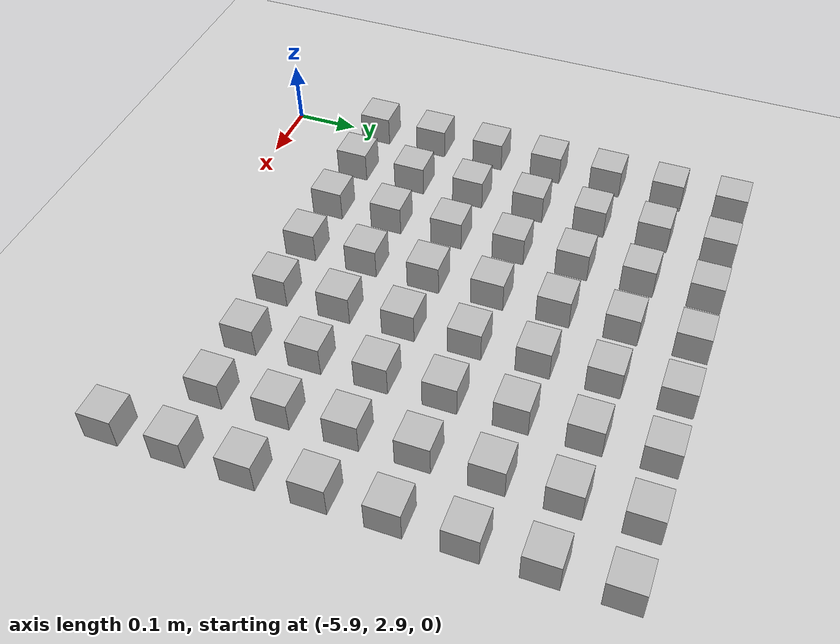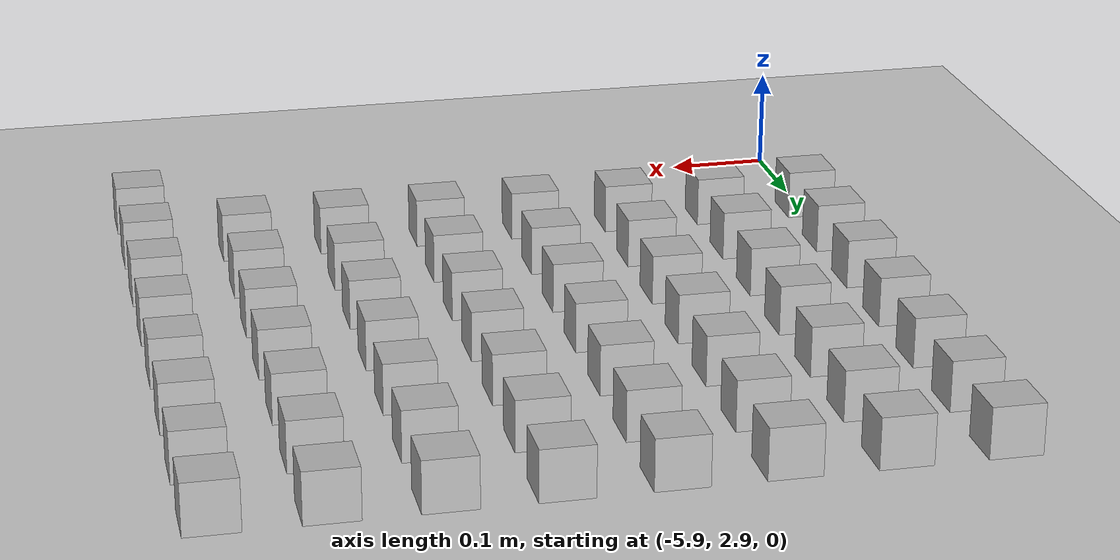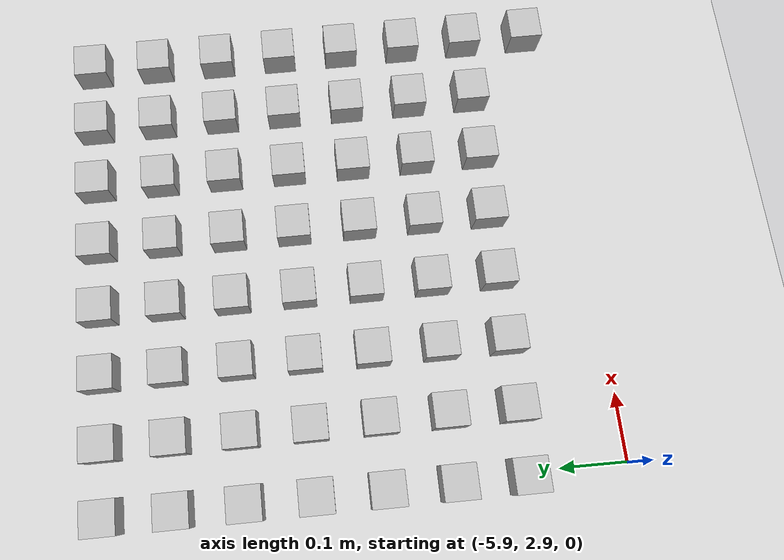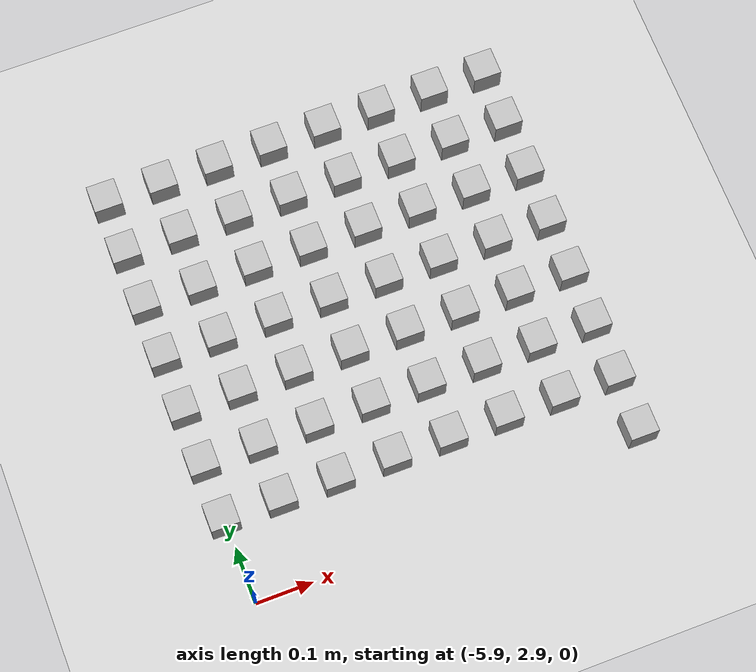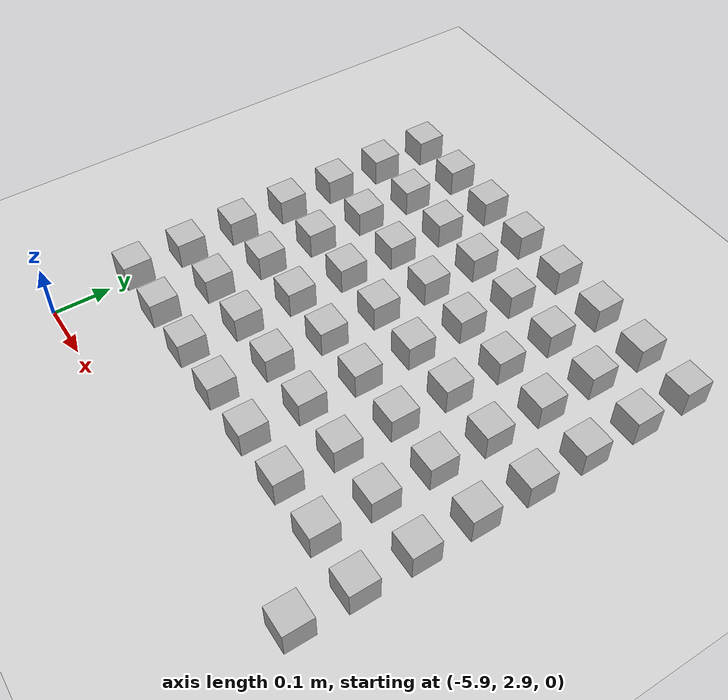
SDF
<sdf version="1.6">
 <world name="default">
  <model name="ground_plane">
   <static>1</static>
   <link name="link">
    <collision name="collision">
     <geometry><plane><normal>0 0 1</normal><size>100 100</size></plane></geometry>
     <surface><friction><ode><mu>100</mu><mu2>50</mu2></ode></friction></surface>
    </collision>
    <visual name="visual">
     <cast_shadows>0</cast_shadows>
     <geometry><plane><normal>0 0 1</normal><size>100 100</size></plane></geometry>
     <material>
      <script><uri>file://media/materials/scripts/gazebo.material</uri><name>Gazebo/Grey</name></script>
     </material>
    </visual>
   </link>
  </model>
  <model name="at135">
   <static>0</static>
   <link name="link">
    <inertial>
     <mass>0.01</mass>
     <inertia><ixx>4e-05</ixx><ixy>0</ixy><ixz>0</ixz><iyy>4e-05</iyy><iyz>0</iyz><izz>4e-05</izz></inertia>
    </inertial>
    <visual name="visual">
     <geometry><box><size>0.05 0.05 0.05</size></box></geometry>
     <material>
      <script>
       <uri>model://at0/materials/scripts</uri>
       <uri>model://at0/materials/textures</uri>
       <name>at0/Diffuse</name>
      </script>
     </material>
    </visual>
    <collision name="collision">
     <geometry><box><size>0.05 0.05 0.05</size></box></geometry>
     <surface><friction><ode><mu>0.8</mu><mu2>0.7</mu2></ode></friction></surface>
    </collision>
   </link>
   <pose>-5.20443 2.95036 0.025 0 -0 0</pose>
  </model>
  <model name="at136">
   <static>0</static>
   <link name="link">
    <inertial>
     <mass>0.01</mass>
     <inertia><ixx>4e-05</ixx><ixy>0</ixy><ixz>0</ixz><iyy>4e-05</iyy><iyz>0</iyz><izz>4e-05</izz></inertia>
    </inertial>
    <visual name="visual">
     <geometry><box><size>0.05 0.05 0.05</size></box></geometry>
     <material>
      <script>
       <uri>model://at0/materials/scripts</uri>
       <uri>model://at0/materials/textures</uri>
       <name>at0/Diffuse</name>
      </script>
     </material>
    </visual>
    <collision name="collision">
     <geometry><box><size>0.05 0.05 0.05</size></box></geometry>
     <surface><friction><ode><mu>0.8</mu><mu2>0.7</mu2></ode></friction></surface>
    </collision>
   </link>
   <pose>-5.90443 3.05036 0.025 0 -0 0</pose>
  </model>
  <model name="at137">
   <static>0</static>
   <link name="link">
    <inertial>
     <mass>0.01</mass>
     <inertia><ixx>4e-05</ixx><ixy>0</ixy><ixz>0</ixz><iyy>4e-05</iyy><iyz>0</iyz><izz>4e-05</izz></inertia>
    </inertial>
    <visual name="visual">
     <geometry><box><size>0.05 0.05 0.05</size></box></geometry>
     <material>
      <script>
       <uri>model://at0/materials/scripts</uri>
       <uri>model://at0/materials/textures</uri>
       <name>at0/Diffuse</name>
      </script>
     </material>
    </visual>
    <collision name="collision">
     <geometry><box><size>0.05 0.05 0.05</size></box></geometry>
     <surface><friction><ode><mu>0.8</mu><mu2>0.7</mu2></ode></friction></surface>
    </collision>
   </link>
   <pose>-5.80443 3.05036 0.025 0 -0 0</pose>
  </model>
  <model name="at138">
   <static>0</static>
   <link name="link">
    <inertial>
     <mass>0.01</mass>
     <inertia><ixx>4e-05</ixx><ixy>0</ixy><ixz>0</ixz><iyy>4e-05</iyy><iyz>0</iyz><izz>4e-05</izz></inertia>
    </inertial>
    <visual name="visual">
     <geometry><box><size>0.05 0.05 0.05</size></box></geometry>
     <material>
      <script>
       <uri>model://at0/materials/scripts</uri>
       <uri>model://at0/materials/textures</uri>
       <name>at0/Diffuse</name>
      </script>
     </material>
    </visual>
    <collision name="collision">
     <geometry><box><size>0.05 0.05 0.05</size></box></geometry>
     <surface><friction><ode><mu>0.8</mu><mu2>0.7</mu2></ode></friction></surface>
    </collision>
   </link>
   <pose>-5.70443 3.05036 0.025 0 -0 0</pose>
  </model>
  <model name="at139">
   <static>0</static>
   <link name="link">
    <inertial>
     <mass>0.01</mass>
     <inertia><ixx>4e-05</ixx><ixy>0</ixy><ixz>0</ixz><iyy>4e-05</iyy><iyz>0</iyz><izz>4e-05</izz></inertia>
    </inertial>
    <visual name="visual">
     <geometry><box><size>0.05 0.05 0.05</size></box></geometry>
     <material>
      <script>
       <uri>model://at0/materials/scripts</uri>
       <uri>model://at0/materials/textures</uri>
       <name>at0/Diffuse</name>
      </script>
     </material>
    </visual>
    <collision name="collision">
     <geometry><box><size>0.05 0.05 0.05</size></box></geometry>
     <surface><friction><ode><mu>0.8</mu><mu2>0.7</mu2></ode></friction></surface>
    </collision>
   </link>
   <pose>-5.60443 3.05036 0.025 0 -0 0</pose>
  </model>
  <model name="at140">
   <static>0</static>
   <link name="link">
    <inertial>
     <mass>0.01</mass>
     <inertia><ixx>4e-05</ixx><ixy>0</ixy><ixz>0</ixz><iyy>4e-05</iyy><iyz>0</iyz><izz>4e-05</izz></inertia>
    </inertial>
    <visual name="visual">
     <geometry><box><size>0.05 0.05 0.05</size></box></geometry>
     <material>
      <script>
       <uri>model://at0/materials/scripts</uri>
       <uri>model://at0/materials/textures</uri>
       <name>at0/Diffuse</name>
      </script>
     </material>
    </visual>
    <collision name="collision">
     <geometry><box><size>0.05 0.05 0.05</size></box></geometry>
     <surface><friction><ode><mu>0.8</mu><mu2>0.7</mu2></ode></friction></surface>
    </collision>
   </link>
   <pose>-5.50443 3.05036 0.025 0 -0 0</pose>
  </model>
  <model name="at141">
   <static>0</static>
   <link name="link">
    <inertial>
     <mass>0.01</mass>
     <inertia><ixx>4e-05</ixx><ixy>0</ixy><ixz>0</ixz><iyy>4e-05</iyy><iyz>0</iyz><izz>4e-05</izz></inertia>
    </inertial>
    <visual name="visual">
     <geometry><box><size>0.05 0.05 0.05</size></box></geometry>
     <material>
      <script>
       <uri>model://at0/materials/scripts</uri>
       <uri>model://at0/materials/textures</uri>
       <name>at0/Diffuse</name>
      </script>
     </material>
    </visual>
    <collision name="collision">
     <geometry><box><size>0.05 0.05 0.05</size></box></geometry>
     <surface><friction><ode><mu>0.8</mu><mu2>0.7</mu2></ode></friction></surface>
    </collision>
   </link>
   <pose>-5.40443 3.05036 0.025 0 -0 0</pose>
  </model>
  <model name="at142">
   <static>0</static>
   <link name="link">
    <inertial>
     <mass>0.01</mass>
     <inertia><ixx>4e-05</ixx><ixy>0</ixy><ixz>0</ixz><iyy>4e-05</iyy><iyz>0</iyz><izz>4e-05</izz></inertia>
    </inertial>
    <visual name="visual">
     <geometry><box><size>0.05 0.05 0.05</size></box></geometry>
     <material>
      <script>
       <uri>model://at0/materials/scripts</uri>
       <uri>model://at0/materials/textures</uri>
       <name>at0/Diffuse</name>
      </script>
     </material>
    </visual>
    <collision name="collision">
     <geometry><box><size>0.05 0.05 0.05</size></box></geometry>
     <surface><friction><ode><mu>0.8</mu><mu2>0.7</mu2></ode></friction></surface>
    </collision>
   </link>
   <pose>-5.30443 3.05036 0.025 0 -0 0</pose>
  </model>
  <model name="at143">
   <static>0</static>
   <link name="link">
    <inertial>
     <mass>0.01</mass>
     <inertia><ixx>4e-05</ixx><ixy>0</ixy><ixz>0</ixz><iyy>4e-05</iyy><iyz>0</iyz><izz>4e-05</izz></inertia>
    </inertial>
    <visual name="visual">
     <geometry><box><size>0.05 0.05 0.05</size></box></geometry>
     <material>
      <script>
       <uri>model://at0/materials/scripts</uri>
       <uri>model://at0/materials/textures</uri>
       <name>at0/Diffuse</name>
      </script>
     </material>
    </visual>
    <collision name="collision">
     <geometry><box><size>0.05 0.05 0.05</size></box></geometry>
     <surface><friction><ode><mu>0.8</mu><mu2>0.7</mu2></ode></friction></surface>
    </collision>
   </link>
   <pose>-5.20443 3.05036 0.025 0 -0 0</pose>
  </model>
  <model name="at144">
   <static>0</static>
   <link name="link">
    <inertial>
     <mass>0.01</mass>
     <inertia><ixx>4e-05</ixx><ixy>0</ixy><ixz>0</ixz><iyy>4e-05</iyy><iyz>0</iyz><izz>4e-05</izz></inertia>
    </inertial>
    <visual name="visual">
     <geometry><box><size>0.05 0.05 0.05</size></box></geometry>
     <material>
      <script>
       <uri>model://at0/materials/scripts</uri>
       <uri>model://at0/materials/textures</uri>
       <name>at0/Diffuse</name>
      </script>
     </material>
    </visual>
    <collision name="collision">
     <geometry><box><size>0.05 0.05 0.05</size></box></geometry>
     <surface><friction><ode><mu>0.8</mu><mu2>0.7</mu2></ode></friction></surface>
    </collision>
   </link>
   <pose>-5.90443 3.15036 0.025 0 -0 0</pose>
  </model>
  <model name="at145">
   <static>0</static>
   <link name="link">
    <inertial>
     <mass>0.01</mass>
     <inertia><ixx>4e-05</ixx><ixy>0</ixy><ixz>0</ixz><iyy>4e-05</iyy><iyz>0</iyz><izz>4e-05</izz></inertia>
    </inertial>
    <visual name="visual">
     <geometry><box><size>0.05 0.05 0.05</size></box></geometry>
     <material>
      <script>
       <uri>model://at0/materials/scripts</uri>
       <uri>model://at0/materials/textures</uri>
       <name>at0/Diffuse</name>
      </script>
     </material>
    </visual>
    <collision name="collision">
     <geometry><box><size>0.05 0.05 0.05</size></box></geometry>
     <surface><friction><ode><mu>0.8</mu><mu2>0.7</mu2></ode></friction></surface>
    </collision>
   </link>
   <pose>-5.80443 3.15036 0.025 0 -0 0</pose>
  </model>
  <model name="at146">
   <static>0</static>
   <link name="link">
    <inertial>
     <mass>0.01</mass>
     <inertia><ixx>4e-05</ixx><ixy>0</ixy><ixz>0</ixz><iyy>4e-05</iyy><iyz>0</iyz><izz>4e-05</izz></inertia>
    </inertial>
    <visual name="visual">
     <geometry><box><size>0.05 0.05 0.05</size></box></geometry>
     <material>
      <script>
       <uri>model://at0/materials/scripts</uri>
       <uri>model://at0/materials/textures</uri>
       <name>at0/Diffuse</name>
      </script>
     </material>
    </visual>
    <collision name="collision">
     <geometry><box><size>0.05 0.05 0.05</size></box></geometry>
     <surface><friction><ode><mu>0.8</mu><mu2>0.7</mu2></ode></friction></surface>
    </collision>
   </link>
   <pose>-5.70443 3.15036 0.025 0 -0 0</pose>
  </model>
  <model name="at147">
   <static>0</static>
   <link name="link">
    <inertial>
     <mass>0.01</mass>
     <inertia><ixx>4e-05</ixx><ixy>0</ixy><ixz>0</ixz><iyy>4e-05</iyy><iyz>0</iyz><izz>4e-05</izz></inertia>
    </inertial>
    <visual name="visual">
     <geometry><box><size>0.05 0.05 0.05</size></box></geometry>
     <material>
      <script>
       <uri>model://at0/materials/scripts</uri>
       <uri>model://at0/materials/textures</uri>
       <name>at0/Diffuse</name>
      </script>
     </material>
    </visual>
    <collision name="collision">
     <geometry><box><size>0.05 0.05 0.05</size></box></geometry>
     <surface><friction><ode><mu>0.8</mu><mu2>0.7</mu2></ode></friction></surface>
    </collision>
   </link>
   <pose>-5.60443 3.15036 0.025 0 -0 0</pose>
  </model>
  <model name="at148">
   <static>0</static>
   <link name="link">
    <inertial>
     <mass>0.01</mass>
     <inertia><ixx>4e-05</ixx><ixy>0</ixy><ixz>0</ixz><iyy>4e-05</iyy><iyz>0</iyz><izz>4e-05</izz></inertia>
    </inertial>
    <visual name="visual">
     <geometry><box><size>0.05 0.05 0.05</size></box></geometry>
     <material>
      <script>
       <uri>model://at0/materials/scripts</uri>
       <uri>model://at0/materials/textures</uri>
       <name>at0/Diffuse</name>
      </script>
     </material>
    </visual>
    <collision name="collision">
     <geometry><box><size>0.05 0.05 0.05</size></box></geometry>
     <surface><friction><ode><mu>0.8</mu><mu2>0.7</mu2></ode></friction></surface>
    </collision>
   </link>
   <pose>-5.50443 3.15036 0.025 0 -0 0</pose>
  </model>
  <model name="at149">
   <static>0</static>
   <link name="link">
    <inertial>
     <mass>0.01</mass>
     <inertia><ixx>4e-05</ixx><ixy>0</ixy><ixz>0</ixz><iyy>4e-05</iyy><iyz>0</iyz><izz>4e-05</izz></inertia>
    </inertial>
    <visual name="visual">
     <geometry><box><size>0.05 0.05 0.05</size></box></geometry>
     <material>
      <script>
       <uri>model://at0/materials/scripts</uri>
       <uri>model://at0/materials/textures</uri>
       <name>at0/Diffuse</name>
      </script>
     </material>
    </visual>
    <collision name="collision">
     <geometry><box><size>0.05 0.05 0.05</size></box></geometry>
     <surface><friction><ode><mu>0.8</mu><mu2>0.7</mu2></ode></friction></surface>
    </collision>
   </link>
   <pose>-5.40443 3.15036 0.025 0 -0 0</pose>
  </model>
  <model name="at150">
   <static>0</static>
   <link name="link">
    <inertial>
     <mass>0.01</mass>
     <inertia><ixx>4e-05</ixx><ixy>0</ixy><ixz>0</ixz><iyy>4e-05</iyy><iyz>0</iyz><izz>4e-05</izz></inertia>
    </inertial>
    <visual name="visual">
     <geometry><box><size>0.05 0.05 0.05</size></box></geometry>
     <material>
      <script>
       <uri>model://at0/materials/scripts</uri>
       <uri>model://at0/materials/textures</uri>
       <name>at0/Diffuse</name>
      </script>
     </material>
    </visual>
    <collision name="collision">
     <geometry><box><size>0.05 0.05 0.05</size></box></geometry>
     <surface><friction><ode><mu>0.8</mu><mu2>0.7</mu2></ode></friction></surface>
    </collision>
   </link>
   <pose>-5.30443 3.15036 0.025 0 -0 0</pose>
  </model>
  <model name="at151">
   <static>0</static>
   <link name="link">
    <inertial>
     <mass>0.01</mass>
     <inertia><ixx>4e-05</ixx><ixy>0</ixy><ixz>0</ixz><iyy>4e-05</iyy><iyz>0</iyz><izz>4e-05</izz></inertia>
    </inertial>
    <visual name="visual">
     <geometry><box><size>0.05 0.05 0.05</size></box></geometry>
     <material>
      <script>
       <uri>model://at0/materials/scripts</uri>
       <uri>model://at0/materials/textures</uri>
       <name>at0/Diffuse</name>
      </script>
     </material>
    </visual>
    <collision name="collision">
     <geometry><box><size>0.05 0.05 0.05</size></box></geometry>
     <surface><friction><ode><mu>0.8</mu><mu2>0.7</mu2></ode></friction></surface>
    </collision>
   </link>
   <pose>-5.20443 3.15036 0.025 0 -0 0</pose>
  </model>
  <model name="at152">
   <static>0</static>
   <link name="link">
    <inertial>
     <mass>0.01</mass>
     <inertia><ixx>4e-05</ixx><ixy>0</ixy><ixz>0</ixz><iyy>4e-05</iyy><iyz>0</iyz><izz>4e-05</izz></inertia>
    </inertial>
    <visual name="visual">
     <geometry><box><size>0.05 0.05 0.05</size></box></geometry>
     <material>
      <script>
       <uri>model://at0/materials/scripts</uri>
       <uri>model://at0/materials/textures</uri>
       <name>at0/Diffuse</name>
      </script>
     </material>
    </visual>
    <collision name="collision">
     <geometry><box><size>0.05 0.05 0.05</size></box></geometry>
     <surface><friction><ode><mu>0.8</mu><mu2>0.7</mu2></ode></friction></surface>
    </collision>
   </link>
   <pose>-5.90443 3.25036 0.025 0 -0 0</pose>
  </model>
  <model name="at153">
   <static>0</static>
   <link name="link">
    <inertial>
     <mass>0.01</mass>
     <inertia><ixx>4e-05</ixx><ixy>0</ixy><ixz>0</ixz><iyy>4e-05</iyy><iyz>0</iyz><izz>4e-05</izz></inertia>
    </inertial>
    <visual name="visual">
     <geometry><box><size>0.05 0.05 0.05</size></box></geometry>
     <material>
      <script>
       <uri>model://at0/materials/scripts</uri>
       <uri>model://at0/materials/textures</uri>
       <name>at0/Diffuse</name>
      </script>
     </material>
    </visual>
    <collision name="collision">
     <geometry><box><size>0.05 0.05 0.05</size></box></geometry>
     <surface><friction><ode><mu>0.8</mu><mu2>0.7</mu2></ode></friction></surface>
    </collision>
   </link>
   <pose>-5.80443 3.25036 0.025 0 -0 0</pose>
  </model>
  <model name="at154">
   <static>0</static>
   <link name="link">
    <inertial>
     <mass>0.01</mass>
     <inertia><ixx>4e-05</ixx><ixy>0</ixy><ixz>0</ixz><iyy>4e-05</iyy><iyz>0</iyz><izz>4e-05</izz></inertia>
    </inertial>
    <visual name="visual">
     <geometry><box><size>0.05 0.05 0.05</size></box></geometry>
     <material>
      <script>
       <uri>model://at0/materials/scripts</uri>
       <uri>model://at0/materials/textures</uri>
       <name>at0/Diffuse</name>
      </script>
     </material>
    </visual>
    <collision name="collision">
     <geometry><box><size>0.05 0.05 0.05</size></box></geometry>
     <surface><friction><ode><mu>0.8</mu><mu2>0.7</mu2></ode></friction></surface>
    </collision>
   </link>
   <pose>-5.70443 3.25036 0.025 0 -0 0</pose>
  </model>
  <model name="at155">
   <static>0</static>
   <link name="link">
    <inertial>
     <mass>0.01</mass>
     <inertia><ixx>4e-05</ixx><ixy>0</ixy><ixz>0</ixz><iyy>4e-05</iyy><iyz>0</iyz><izz>4e-05</izz></inertia>
    </inertial>
    <visual name="visual">
     <geometry><box><size>0.05 0.05 0.05</size></box></geometry>
     <material>
      <script>
       <uri>model://at0/materials/scripts</uri>
       <uri>model://at0/materials/textures</uri>
       <name>at0/Diffuse</name>
      </script>
     </material>
    </visual>
    <collision name="collision">
     <geometry><box><size>0.05 0.05 0.05</size></box></geometry>
     <surface><friction><ode><mu>0.8</mu><mu2>0.7</mu2></ode></friction></surface>
    </collision>
   </link>
   <pose>-5.60443 3.25036 0.025 0 -0 0</pose>
  </model>
  <model name="at156">
   <static>0</static>
   <link name="link">
    <inertial>
     <mass>0.01</mass>
     <inertia><ixx>4e-05</ixx><ixy>0</ixy><ixz>0</ixz><iyy>4e-05</iyy><iyz>0</iyz><izz>4e-05</izz></inertia>
    </inertial>
    <visual name="visual">
     <geometry><box><size>0.05 0.05 0.05</size></box></geometry>
     <material>
      <script>
       <uri>model://at0/materials/scripts</uri>
       <uri>model://at0/materials/textures</uri>
       <name>at0/Diffuse</name>
      </script>
     </material>
    </visual>
    <collision name="collision">
     <geometry><box><size>0.05 0.05 0.05</size></box></geometry>
     <surface><friction><ode><mu>0.8</mu><mu2>0.7</mu2></ode></friction></surface>
    </collision>
   </link>
   <pose>-5.50443 3.25036 0.025 0 -0 0</pose>
  </model>
  <model name="at157">
   <static>0</static>
   <link name="link">
    <inertial>
     <mass>0.01</mass>
     <inertia><ixx>4e-05</ixx><ixy>0</ixy><ixz>0</ixz><iyy>4e-05</iyy><iyz>0</iyz><izz>4e-05</izz></inertia>
    </inertial>
    <visual name="visual">
     <geometry><box><size>0.05 0.05 0.05</size></box></geometry>
     <material>
      <script>
       <uri>model://at0/materials/scripts</uri>
       <uri>model://at0/materials/textures</uri>
       <name>at0/Diffuse</name>
      </script>
     </material>
    </visual>
    <collision name="collision">
     <geometry><box><size>0.05 0.05 0.05</size></box></geometry>
     <surface><friction><ode><mu>0.8</mu><mu2>0.7</mu2></ode></friction></surface>
    </collision>
   </link>
   <pose>-5.40443 3.25036 0.025 0 -0 0</pose>
  </model>
  <model name="at158">
   <static>0</static>
   <link name="link">
    <inertial>
     <mass>0.01</mass>
     <inertia><ixx>4e-05</ixx><ixy>0</ixy><ixz>0</ixz><iyy>4e-05</iyy><iyz>0</iyz><izz>4e-05</izz></inertia>
    </inertial>
    <visual name="visual">
     <geometry><box><size>0.05 0.05 0.05</size></box></geometry>
     <material>
      <script>
       <uri>model://at0/materials/scripts</uri>
       <uri>model://at0/materials/textures</uri>
       <name>at0/Diffuse</name>
      </script>
     </material>
    </visual>
    <collision name="collision">
     <geometry><box><size>0.05 0.05 0.05</size></box></geometry>
     <surface><friction><ode><mu>0.8</mu><mu2>0.7</mu2></ode></friction></surface>
    </collision>
   </link>
   <pose>-5.30443 3.25036 0.025 0 -0 0</pose>
  </model>
  <model name="at159">
   <static>0</static>
   <link name="link">
    <inertial>
     <mass>0.01</mass>
     <inertia><ixx>4e-05</ixx><ixy>0</ixy><ixz>0</ixz><iyy>4e-05</iyy><iyz>0</iyz><izz>4e-05</izz></inertia>
    </inertial>
    <visual name="visual">
     <geometry><box><size>0.05 0.05 0.05</size></box></geometry>
     <material>
      <script>
       <uri>model://at0/materials/scripts</uri>
       <uri>model://at0/materials/textures</uri>
       <name>at0/Diffuse</name>
      </script>
     </material>
    </visual>
    <collision name="collision">
     <geometry><box><size>0.05 0.05 0.05</size></box></geometry>
     <surface><friction><ode><mu>0.8</mu><mu2>0.7</mu2></ode></friction></surface>
    </collision>
   </link>
   <pose>-5.20443 3.25036 0.025 0 -0 0</pose>
  </model>
  <model name="at160">
   <static>0</static>
   <link name="link">
    <inertial>
     <mass>0.01</mass>
     <inertia><ixx>4e-05</ixx><ixy>0</ixy><ixz>0</ixz><iyy>4e-05</iyy><iyz>0</iyz><izz>4e-05</izz></inertia>
    </inertial>
    <visual name="visual">
     <geometry><box><size>0.05 0.05 0.05</size></box></geometry>
     <material>
      <script>
       <uri>model://at0/materials/scripts</uri>
       <uri>model://at0/materials/textures</uri>
       <name>at0/Diffuse</name>
      </script>
     </material>
    </visual>
    <collision name="collision">
     <geometry><box><size>0.05 0.05 0.05</size></box></geometry>
     <surface><friction><ode><mu>0.8</mu><mu2>0.7</mu2></ode></friction></surface>
    </collision>
   </link>
   <pose>-5.90443 3.35036 0.025 0 -0 0</pose>
  </model>
  <model name="at161">
   <static>0</static>
   <link name="link">
    <inertial>
     <mass>0.01</mass>
     <inertia><ixx>4e-05</ixx><ixy>0</ixy><ixz>0</ixz><iyy>4e-05</iyy><iyz>0</iyz><izz>4e-05</izz></inertia>
    </inertial>
    <visual name="visual">
     <geometry><box><size>0.05 0.05 0.05</size></box></geometry>
     <material>
      <script>
       <uri>model://at0/materials/scripts</uri>
       <uri>model://at0/materials/textures</uri>
       <name>at0/Diffuse</name>
      </script>
     </material>
    </visual>
    <collision name="collision">
     <geometry><box><size>0.05 0.05 0.05</size></box></geometry>
     <surface><friction><ode><mu>0.8</mu><mu2>0.7</mu2></ode></friction></surface>
    </collision>
   </link>
   <pose>-5.80443 3.35036 0.025 0 -0 0</pose>
  </model>
  <model name="at162">
   <static>0</static>
   <link name="link">
    <inertial>
     <mass>0.01</mass>
     <inertia><ixx>4e-05</ixx><ixy>0</ixy><ixz>0</ixz><iyy>4e-05</iyy><iyz>0</iyz><izz>4e-05</izz></inertia>
    </inertial>
    <visual name="visual">
     <geometry><box><size>0.05 0.05 0.05</size></box></geometry>
     <material>
      <script>
       <uri>model://at0/materials/scripts</uri>
       <uri>model://at0/materials/textures</uri>
       <name>at0/Diffuse</name>
      </script>
     </material>
    </visual>
    <collision name="collision">
     <geometry><box><size>0.05 0.05 0.05</size></box></geometry>
     <surface><friction><ode><mu>0.8</mu><mu2>0.7</mu2></ode></friction></surface>
    </collision>
   </link>
   <pose>-5.70443 3.35036 0.025 0 -0 0</pose>
  </model>
  <model name="at163">
   <static>0</static>
   <link name="link">
    <inertial>
     <mass>0.01</mass>
     <inertia><ixx>4e-05</ixx><ixy>0</ixy><ixz>0</ixz><iyy>4e-05</iyy><iyz>0</iyz><izz>4e-05</izz></inertia>
    </inertial>
    <visual name="visual">
     <geometry><box><size>0.05 0.05 0.05</size></box></geometry>
     <material>
      <script>
       <uri>model://at0/materials/scripts</uri>
       <uri>model://at0/materials/textures</uri>
       <name>at0/Diffuse</name>
      </script>
     </material>
    </visual>
    <collision name="collision">
     <geometry><box><size>0.05 0.05 0.05</size></box></geometry>
     <surface><friction><ode><mu>0.8</mu><mu2>0.7</mu2></ode></friction></surface>
    </collision>
   </link>
   <pose>-5.60443 3.35036 0.025 0 -0 0</pose>
  </model>
  <model name="at164">
   <static>0</static>
   <link name="link">
    <inertial>
     <mass>0.01</mass>
     <inertia><ixx>4e-05</ixx><ixy>0</ixy><ixz>0</ixz><iyy>4e-05</iyy><iyz>0</iyz><izz>4e-05</izz></inertia>
    </inertial>
    <visual name="visual">
     <geometry><box><size>0.05 0.05 0.05</size></box></geometry>
     <material>
      <script>
       <uri>model://at0/materials/scripts</uri>
       <uri>model://at0/materials/textures</uri>
       <name>at0/Diffuse</name>
      </script>
     </material>
    </visual>
    <collision name="collision">
     <geometry><box><size>0.05 0.05 0.05</size></box></geometry>
     <surface><friction><ode><mu>0.8</mu><mu2>0.7</mu2></ode></friction></surface>
    </collision>
   </link>
   <pose>-5.50443 3.35036 0.025 0 -0 0</pose>
  </model>
  <model name="at165">
   <static>0</static>
   <link name="link">
    <inertial>
     <mass>0.01</mass>
     <inertia><ixx>4e-05</ixx><ixy>0</ixy><ixz>0</ixz><iyy>4e-05</iyy><iyz>0</iyz><izz>4e-05</izz></inertia>
    </inertial>
    <visual name="visual">
     <geometry><box><size>0.05 0.05 0.05</size></box></geometry>
     <material>
      <script>
       <uri>model://at0/materials/scripts</uri>
       <uri>model://at0/materials/textures</uri>
       <name>at0/Diffuse</name>
      </script>
     </material>
    </visual>
    <collision name="collision">
     <geometry><box><size>0.05 0.05 0.05</size></box></geometry>
     <surface><friction><ode><mu>0.8</mu><mu2>0.7</mu2></ode></friction></surface>
    </collision>
   </link>
   <pose>-5.40443 3.35036 0.025 0 -0 0</pose>
  </model>
  <model name="at166">
   <static>0</static>
   <link name="link">
    <inertial>
     <mass>0.01</mass>
     <inertia><ixx>4e-05</ixx><ixy>0</ixy><ixz>0</ixz><iyy>4e-05</iyy><iyz>0</iyz><izz>4e-05</izz></inertia>
    </inertial>
    <visual name="visual">
     <geometry><box><size>0.05 0.05 0.05</size></box></geometry>
     <material>
      <script>
       <uri>model://at0/materials/scripts</uri>
       <uri>model://at0/materials/textures</uri>
       <name>at0/Diffuse</name>
      </script>
     </material>
    </visual>
    <collision name="collision">
     <geometry><box><size>0.05 0.05 0.05</size></box></geometry>
     <surface><friction><ode><mu>0.8</mu><mu2>0.7</mu2></ode></friction></surface>
    </collision>
   </link>
   <pose>-5.30443 3.35036 0.025 0 -0 0</pose>
  </model>
  <model name="at167">
   <static>0</static>
   <link name="link">
    <inertial>
     <mass>0.01</mass>
     <inertia><ixx>4e-05</ixx><ixy>0</ixy><ixz>0</ixz><iyy>4e-05</iyy><iyz>0</iyz><izz>4e-05</izz></inertia>
    </inertial>
    <visual name="visual">
     <geometry><box><size>0.05 0.05 0.05</size></box></geometry>
     <material>
      <script>
       <uri>model://at0/materials/scripts</uri>
       <uri>model://at0/materials/textures</uri>
       <name>at0/Diffuse</name>
      </script>
     </material>
    </visual>
    <collision name="collision">
     <geometry><box><size>0.05 0.05 0.05</size></box></geometry>
     <surface><friction><ode><mu>0.8</mu><mu2>0.7</mu2></ode></friction></surface>
    </collision>
   </link>
   <pose>-5.20443 3.35036 0.025 0 -0 0</pose>
  </model>
  <model name="at168">
   <static>0</static>
   <link name="link">
    <inertial>
     <mass>0.01</mass>
     <inertia><ixx>4e-05</ixx><ixy>0</ixy><ixz>0</ixz><iyy>4e-05</iyy><iyz>0</iyz><izz>4e-05</izz></inertia>
    </inertial>
    <visual name="visual">
     <geometry><box><size>0.05 0.05 0.05</size></box></geometry>
     <material>
      <script>
       <uri>model://at0/materials/scripts</uri>
       <uri>model://at0/materials/textures</uri>
       <name>at0/Diffuse</name>
      </script>
     </material>
    </visual>
    <collision name="collision">
     <geometry><box><size>0.05 0.05 0.05</size></box></geometry>
     <surface><friction><ode><mu>0.8</mu><mu2>0.7</mu2></ode></friction></surface>
    </collision>
   </link>
   <pose>-5.90443 3.45036 0.025 0 -0 0</pose>
  </model>
  <model name="at169">
   <static>0</static>
   <link name="link">
    <inertial>
     <mass>0.01</mass>
     <inertia><ixx>4e-05</ixx><ixy>0</ixy><ixz>0</ixz><iyy>4e-05</iyy><iyz>0</iyz><izz>4e-05</izz></inertia>
    </inertial>
    <visual name="visual">
     <geometry><box><size>0.05 0.05 0.05</size></box></geometry>
     <material>
      <script>
       <uri>model://at0/materials/scripts</uri>
       <uri>model://at0/materials/textures</uri>
       <name>at0/Diffuse</name>
      </script>
     </material>
    </visual>
    <collision name="collision">
     <geometry><box><size>0.05 0.05 0.05</size></box></geometry>
     <surface><friction><ode><mu>0.8</mu><mu2>0.7</mu2></ode></friction></surface>
    </collision>
   </link>
   <pose>-5.80443 3.45036 0.025 0 -0 0</pose>
  </model>
  <model name="at170">
   <static>0</static>
   <link name="link">
    <inertial>
     <mass>0.01</mass>
     <inertia><ixx>4e-05</ixx><ixy>0</ixy><ixz>0</ixz><iyy>4e-05</iyy><iyz>0</iyz><izz>4e-05</izz></inertia>
    </inertial>
    <visual name="visual">
     <geometry><box><size>0.05 0.05 0.05</size></box></geometry>
     <material>
      <script>
       <uri>model://at0/materials/scripts</uri>
       <uri>model://at0/materials/textures</uri>
       <name>at0/Diffuse</name>
      </script>
     </material>
    </visual>
    <collision name="collision">
     <geometry><box><size>0.05 0.05 0.05</size></box></geometry>
     <surface><friction><ode><mu>0.8</mu><mu2>0.7</mu2></ode></friction></surface>
    </collision>
   </link>
   <pose>-5.70443 3.45036 0.025 0 -0 0</pose>
  </model>
  <model name="at171">
   <static>0</static>
   <link name="link">
    <inertial>
     <mass>0.01</mass>
     <inertia><ixx>4e-05</ixx><ixy>0</ixy><ixz>0</ixz><iyy>4e-05</iyy><iyz>0</iyz><izz>4e-05</izz></inertia>
    </inertial>
    <visual name="visual">
     <geometry><box><size>0.05 0.05 0.05</size></box></geometry>
     <material>
      <script>
       <uri>model://at0/materials/scripts</uri>
       <uri>model://at0/materials/textures</uri>
       <name>at0/Diffuse</name>
      </script>
     </material>
    </visual>
    <collision name="collision">
     <geometry><box><size>0.05 0.05 0.05</size></box></geometry>
     <surface><friction><ode><mu>0.8</mu><mu2>0.7</mu2></ode></friction></surface>
    </collision>
   </link>
   <pose>-5.60443 3.45036 0.025 0 -0 0</pose>
  </model>
  <model name="at172">
   <static>0</static>
   <link name="link">
    <inertial>
     <mass>0.01</mass>
     <inertia><ixx>4e-05</ixx><ixy>0</ixy><ixz>0</ixz><iyy>4e-05</iyy><iyz>0</iyz><izz>4e-05</izz></inertia>
    </inertial>
    <visual name="visual">
     <geometry><box><size>0.05 0.05 0.05</size></box></geometry>
     <material>
      <script>
       <uri>model://at0/materials/scripts</uri>
       <uri>model://at0/materials/textures</uri>
       <name>at0/Diffuse</name>
      </script>
     </material>
    </visual>
    <collision name="collision">
     <geometry><box><size>0.05 0.05 0.05</size></box></geometry>
     <surface><friction><ode><mu>0.8</mu><mu2>0.7</mu2></ode></friction></surface>
    </collision>
   </link>
   <pose>-5.50443 3.45036 0.025 0 -0 0</pose>
  </model>
  <model name="at173">
   <static>0</static>
   <link name="link">
    <inertial>
     <mass>0.01</mass>
     <inertia><ixx>4e-05</ixx><ixy>0</ixy><ixz>0</ixz><iyy>4e-05</iyy><iyz>0</iyz><izz>4e-05</izz></inertia>
    </inertial>
    <visual name="visual">
     <geometry><box><size>0.05 0.05 0.05</size></box></geometry>
     <material>
      <script>
       <uri>model://at0/materials/scripts</uri>
       <uri>model://at0/materials/textures</uri>
       <name>at0/Diffuse</name>
      </script>
     </material>
    </visual>
    <collision name="collision">
     <geometry><box><size>0.05 0.05 0.05</size></box></geometry>
     <surface><friction><ode><mu>0.8</mu><mu2>0.7</mu2></ode></friction></surface>
    </collision>
   </link>
   <pose>-5.40443 3.45036 0.025 0 -0 0</pose>
  </model>
  <model name="at174">
   <static>0</static>
   <link name="link">
    <inertial>
     <mass>0.01</mass>
     <inertia><ixx>4e-05</ixx><ixy>0</ixy><ixz>0</ixz><iyy>4e-05</iyy><iyz>0</iyz><izz>4e-05</izz></inertia>
    </inertial>
    <visual name="visual">
     <geometry><box><size>0.05 0.05 0.05</size></box></geometry>
     <material>
      <script>
       <uri>model://at0/materials/scripts</uri>
       <uri>model://at0/materials/textures</uri>
       <name>at0/Diffuse</name>
      </script>
     </material>
    </visual>
    <collision name="collision">
     <geometry><box><size>0.05 0.05 0.05</size></box></geometry>
     <surface><friction><ode><mu>0.8</mu><mu2>0.7</mu2></ode></friction></surface>
    </collision>
   </link>
   <pose>-5.30443 3.45036 0.025 0 -0 0</pose>
  </model>
  <model name="at175">
   <static>0</static>
   <link name="link">
    <inertial>
     <mass>0.01</mass>
     <inertia><ixx>4e-05</ixx><ixy>0</ixy><ixz>0</ixz><iyy>4e-05</iyy><iyz>0</iyz><izz>4e-05</izz></inertia>
    </inertial>
    <visual name="visual">
     <geometry><box><size>0.05 0.05 0.05</size></box></geometry>
     <material>
      <script>
       <uri>model://at0/materials/scripts</uri>
       <uri>model://at0/materials/textures</uri>
       <name>at0/Diffuse</name>
      </script>
     </material>
    </visual>
    <collision name="collision">
     <geometry><box><size>0.05 0.05 0.05</size></box></geometry>
     <surface><friction><ode><mu>0.8</mu><mu2>0.7</mu2></ode></friction></surface>
    </collision>
   </link>
   <pose>-5.20443 3.45036 0.025 0 -0 0</pose>
  </model>
  <model name="at176">
   <static>0</static>
   <link name="link">
    <inertial>
     <mass>0.01</mass>
     <inertia><ixx>4e-05</ixx><ixy>0</ixy><ixz>0</ixz><iyy>4e-05</iyy><iyz>0</iyz><izz>4e-05</izz></inertia>
    </inertial>
    <visual name="visual">
     <geometry><box><size>0.05 0.05 0.05</size></box></geometry>
     <material>
      <script>
       <uri>model://at0/materials/scripts</uri>
       <uri>model://at0/materials/textures</uri>
       <name>at0/Diffuse</name>
      </script>
     </material>
    </visual>
    <collision name="collision">
     <geometry><box><size>0.05 0.05 0.05</size></box></geometry>
     <surface><friction><ode><mu>0.8</mu><mu2>0.7</mu2></ode></friction></surface>
    </collision>
   </link>
   <pose>-5.90443 3.55036 0.025 0 -0 0</pose>
  </model>
  <model name="at177">
   <static>0</static>
   <link name="link">
    <inertial>
     <mass>0.01</mass>
     <inertia><ixx>4e-05</ixx><ixy>0</ixy><ixz>0</ixz><iyy>4e-05</iyy><iyz>0</iyz><izz>4e-05</izz></inertia>
    </inertial>
    <visual name="visual">
     <geometry><box><size>0.05 0.05 0.05</size></box></geometry>
     <material>
      <script>
       <uri>model://at0/materials/scripts</uri>
       <uri>model://at0/materials/textures</uri>
       <name>at0/Diffuse</name>
      </script>
     </material>
    </visual>
    <collision name="collision">
     <geometry><box><size>0.05 0.05 0.05</size></box></geometry>
     <surface><friction><ode><mu>0.8</mu><mu2>0.7</mu2></ode></friction></surface>
    </collision>
   </link>
   <pose>-5.80443 3.55036 0.025 0 -0 0</pose>
  </model>
  <model name="at178">
   <static>0</static>
   <link name="link">
    <inertial>
     <mass>0.01</mass>
     <inertia><ixx>4e-05</ixx><ixy>0</ixy><ixz>0</ixz><iyy>4e-05</iyy><iyz>0</iyz><izz>4e-05</izz></inertia>
    </inertial>
    <visual name="visual">
     <geometry><box><size>0.05 0.05 0.05</size></box></geometry>
     <material>
      <script>
       <uri>model://at0/materials/scripts</uri>
       <uri>model://at0/materials/textures</uri>
       <name>at0/Diffuse</name>
      </script>
     </material>
    </visual>
    <collision name="collision">
     <geometry><box><size>0.05 0.05 0.05</size></box></geometry>
     <surface><friction><ode><mu>0.8</mu><mu2>0.7</mu2></ode></friction></surface>
    </collision>
   </link>
   <pose>-5.70443 3.55036 0.025 0 -0 0</pose>
  </model>
  <model name="at179">
   <static>0</static>
   <link name="link">
    <inertial>
     <mass>0.01</mass>
     <inertia><ixx>4e-05</ixx><ixy>0</ixy><ixz>0</ixz><iyy>4e-05</iyy><iyz>0</iyz><izz>4e-05</izz></inertia>
    </inertial>
    <visual name="visual">
     <geometry><box><size>0.05 0.05 0.05</size></box></geometry>
     <material>
      <script>
       <uri>model://at0/materials/scripts</uri>
       <uri>model://at0/materials/textures</uri>
       <name>at0/Diffuse</name>
      </script>
     </material>
    </visual>
    <collision name="collision">
     <geometry><box><size>0.05 0.05 0.05</size></box></geometry>
     <surface><friction><ode><mu>0.8</mu><mu2>0.7</mu2></ode></friction></surface>
    </collision>
   </link>
   <pose>-5.60443 3.55036 0.025 0 -0 0</pose>
  </model>
  <model name="at180">
   <static>0</static>
   <link name="link">
    <inertial>
     <mass>0.01</mass>
     <inertia><ixx>4e-05</ixx><ixy>0</ixy><ixz>0</ixz><iyy>4e-05</iyy><iyz>0</iyz><izz>4e-05</izz></inertia>
    </inertial>
    <visual name="visual">
     <geometry><box><size>0.05 0.05 0.05</size></box></geometry>
     <material>
      <script>
       <uri>model://at0/materials/scripts</uri>
       <uri>model://at0/materials/textures</uri>
       <name>at0/Diffuse</name>
      </script>
     </material>
    </visual>
    <collision name="collision">
     <geometry><box><size>0.05 0.05 0.05</size></box></geometry>
     <surface><friction><ode><mu>0.8</mu><mu2>0.7</mu2></ode></friction></surface>
    </collision>
   </link>
   <pose>-5.50443 3.55036 0.025 0 -0 0</pose>
  </model>
  <model name="at181">
   <static>0</static>
   <link name="link">
    <inertial>
     <mass>0.01</mass>
     <inertia><ixx>4e-05</ixx><ixy>0</ixy><ixz>0</ixz><iyy>4e-05</iyy><iyz>0</iyz><izz>4e-05</izz></inertia>
    </inertial>
    <visual name="visual">
     <geometry><box><size>0.05 0.05 0.05</size></box></geometry>
     <material>
      <script>
       <uri>model://at0/materials/scripts</uri>
       <uri>model://at0/materials/textures</uri>
       <name>at0/Diffuse</name>
      </script>
     </material>
    </visual>
    <collision name="collision">
     <geometry><box><size>0.05 0.05 0.05</size></box></geometry>
     <surface><friction><ode><mu>0.8</mu><mu2>0.7</mu2></ode></friction></surface>
    </collision>
   </link>
   <pose>-5.40443 3.55036 0.025 0 -0 0</pose>
  </model>
  <model name="at182">
   <static>0</static>
   <link name="link">
    <inertial>
     <mass>0.01</mass>
     <inertia><ixx>4e-05</ixx><ixy>0</ixy><ixz>0</ixz><iyy>4e-05</iyy><iyz>0</iyz><izz>4e-05</izz></inertia>
    </inertial>
    <visual name="visual">
     <geometry><box><size>0.05 0.05 0.05</size></box></geometry>
     <material>
      <script>
       <uri>model://at0/materials/scripts</uri>
       <uri>model://at0/materials/textures</uri>
       <name>at0/Diffuse</name>
      </script>
     </material>
    </visual>
    <collision name="collision">
     <geometry><box><size>0.05 0.05 0.05</size></box></geometry>
     <surface><friction><ode><mu>0.8</mu><mu2>0.7</mu2></ode></friction></surface>
    </collision>
   </link>
   <pose>-5.30443 3.55036 0.025 0 -0 0</pose>
  </model>
  <model name="at183">
   <static>0</static>
   <link name="link">
    <inertial>
     <mass>0.01</mass>
     <inertia><ixx>4e-05</ixx><ixy>0</ixy><ixz>0</ixz><iyy>4e-05</iyy><iyz>0</iyz><izz>4e-05</izz></inertia>
    </inertial>
    <visual name="visual">
     <geometry><box><size>0.05 0.05 0.05</size></box></geometry>
     <material>
      <script>
       <uri>model://at0/materials/scripts</uri>
       <uri>model://at0/materials/textures</uri>
       <name>at0/Diffuse</name>
      </script>
     </material>
    </visual>
    <collision name="collision">
     <geometry><box><size>0.05 0.05 0.05</size></box></geometry>
     <surface><friction><ode><mu>0.8</mu><mu2>0.7</mu2></ode></friction></surface>
    </collision>
   </link>
   <pose>-5.20443 3.55036 0.025 0 -0 0</pose>
  </model>
  <model name="at184">
   <static>0</static>
   <link name="link">
    <inertial>
     <mass>0.01</mass>
     <inertia><ixx>4e-05</ixx><ixy>0</ixy><ixz>0</ixz><iyy>4e-05</iyy><iyz>0</iyz><izz>4e-05</izz></inertia>
    </inertial>
    <visual name="visual">
     <geometry><box><size>0.05 0.05 0.05</size></box></geometry>
     <material>
      <script>
       <uri>model://at0/materials/scripts</uri>
       <uri>model://at0/materials/textures</uri>
       <name>at0/Diffuse</name>
      </script>
     </material>
    </visual>
    <collision name="collision">
     <geometry><box><size>0.05 0.05 0.05</size></box></geometry>
     <surface><friction><ode><mu>0.8</mu><mu2>0.7</mu2></ode></friction></surface>
    </collision>
   </link>
   <pose>-5.90443 3.65036 0.025 0 -0 0</pose>
  </model>
  <model name="at185">
   <static>0</static>
   <link name="link">
    <inertial>
     <mass>0.01</mass>
     <inertia><ixx>4e-05</ixx><ixy>0</ixy><ixz>0</ixz><iyy>4e-05</iyy><iyz>0</iyz><izz>4e-05</izz></inertia>
    </inertial>
    <visual name="visual">
     <geometry><box><size>0.05 0.05 0.05</size></box></geometry>
     <material>
      <script>
       <uri>model://at0/materials/scripts</uri>
       <uri>model://at0/materials/textures</uri>
       <name>at0/Diffuse</name>
      </script>
     </material>
    </visual>
    <collision name="collision">
     <geometry><box><size>0.05 0.05 0.05</size></box></geometry>
     <surface><friction><ode><mu>0.8</mu><mu2>0.7</mu2></ode></friction></surface>
    </collision>
   </link>
   <pose>-5.80443 3.65036 0.025 0 -0 0</pose>
  </model>
  <model name="at186">
   <static>0</static>
   <link name="link">
    <inertial>
     <mass>0.01</mass>
     <inertia><ixx>4e-05</ixx><ixy>0</ixy><ixz>0</ixz><iyy>4e-05</iyy><iyz>0</iyz><izz>4e-05</izz></inertia>
    </inertial>
    <visual name="visual">
     <geometry><box><size>0.05 0.05 0.05</size></box></geometry>
     <material>
      <script>
       <uri>model://at0/materials/scripts</uri>
       <uri>model://at0/materials/textures</uri>
       <name>at0/Diffuse</name>
      </script>
     </material>
    </visual>
    <collision name="collision">
     <geometry><box><size>0.05 0.05 0.05</size></box></geometry>
     <surface><friction><ode><mu>0.8</mu><mu2>0.7</mu2></ode></friction></surface>
    </collision>
   </link>
   <pose>-5.70443 3.65036 0.025 0 -0 0</pose>
  </model>
  <model name="at187">
   <static>0</static>
   <link name="link">
    <inertial>
     <mass>0.01</mass>
     <inertia><ixx>4e-05</ixx><ixy>0</ixy><ixz>0</ixz><iyy>4e-05</iyy><iyz>0</iyz><izz>4e-05</izz></inertia>
    </inertial>
    <visual name="visual">
     <geometry><box><size>0.05 0.05 0.05</size></box></geometry>
     <material>
      <script>
       <uri>model://at0/materials/scripts</uri>
       <uri>model://at0/materials/textures</uri>
       <name>at0/Diffuse</name>
      </script>
     </material>
    </visual>
    <collision name="collision">
     <geometry><box><size>0.05 0.05 0.05</size></box></geometry>
     <surface><friction><ode><mu>0.8</mu><mu2>0.7</mu2></ode></friction></surface>
    </collision>
   </link>
   <pose>-5.60443 3.65036 0.025 0 -0 0</pose>
  </model>
  <model name="at188">
   <static>0</static>
   <link name="link">
    <inertial>
     <mass>0.01</mass>
     <inertia><ixx>4e-05</ixx><ixy>0</ixy><ixz>0</ixz><iyy>4e-05</iyy><iyz>0</iyz><izz>4e-05</izz></inertia>
    </inertial>
    <visual name="visual">
     <geometry><box><size>0.05 0.05 0.05</size></box></geometry>
     <material>
      <script>
       <uri>model://at0/materials/scripts</uri>
       <uri>model://at0/materials/textures</uri>
       <name>at0/Diffuse</name>
      </script>
     </material>
    </visual>
    <collision name="collision">
     <geometry><box><size>0.05 0.05 0.05</size></box></geometry>
     <surface><friction><ode><mu>0.8</mu><mu2>0.7</mu2></ode></friction></surface>
    </collision>
   </link>
   <pose>-5.50443 3.65036 0.025 0 -0 0</pose>
  </model>
  <model name="at189">
   <static>0</static>
   <link name="link">
    <inertial>
     <mass>0.01</mass>
     <inertia><ixx>4e-05</ixx><ixy>0</ixy><ixz>0</ixz><iyy>4e-05</iyy><iyz>0</iyz><izz>4e-05</izz></inertia>
    </inertial>
    <visual name="visual">
     <geometry><box><size>0.05 0.05 0.05</size></box></geometry>
     <material>
      <script>
       <uri>model://at0/materials/scripts</uri>
       <uri>model://at0/materials/textures</uri>
       <name>at0/Diffuse</name>
      </script>
     </material>
    </visual>
    <collision name="collision">
     <geometry><box><size>0.05 0.05 0.05</size></box></geometry>
     <surface><friction><ode><mu>0.8</mu><mu2>0.7</mu2></ode></friction></surface>
    </collision>
   </link>
   <pose>-5.40443 3.65036 0.025 0 -0 0</pose>
  </model>
  <model name="at190">
   <static>0</static>
   <link name="link">
    <inertial>
     <mass>0.01</mass>
     <inertia><ixx>4e-05</ixx><ixy>0</ixy><ixz>0</ixz><iyy>4e-05</iyy><iyz>0</iyz><izz>4e-05</izz></inertia>
    </inertial>
    <visual name="visual">
     <geometry><box><size>0.05 0.05 0.05</size></box></geometry>
     <material>
      <script>
       <uri>model://at0/materials/scripts</uri>
       <uri>model://at0/materials/textures</uri>
       <name>at0/Diffuse</name>
      </script>
     </material>
    </visual>
    <collision name="collision">
     <geometry><box><size>0.05 0.05 0.05</size></box></geometry>
     <surface><friction><ode><mu>0.8</mu><mu2>0.7</mu2></ode></friction></surface>
    </collision>
   </link>
   <pose>-5.30443 3.65036 0.025 0 -0 0</pose>
  </model>
  <model name="at191">
   <static>0</static>
   <link name="link">
    <inertial>
     <mass>0.01</mass>
     <inertia><ixx>4e-05</ixx><ixy>0</ixy><ixz>0</ixz><iyy>4e-05</iyy><iyz>0</iyz><izz>4e-05</izz></inertia>
    </inertial>
    <visual name="visual">
     <geometry><box><size>0.05 0.05 0.05</size></box></geometry>
     <material>
      <script>
       <uri>model://at0/materials/scripts</uri>
       <uri>model://at0/materials/textures</uri>
       <name>at0/Diffuse</name>
      </script>
     </material>
    </visual>
    <collision name="collision">
     <geometry><box><size>0.05 0.05 0.05</size></box></geometry>
     <surface><friction><ode><mu>0.8</mu><mu2>0.7</mu2></ode></friction></surface>
    </collision>
   </link>
   <pose>-5.20443 3.65036 0.025 0 -0 0</pose>
  </model>
 </world>
</sdf>
